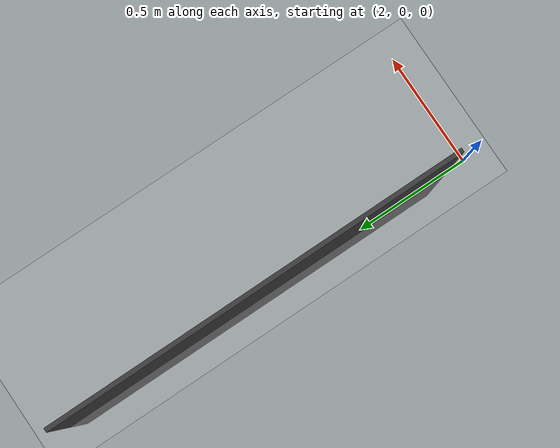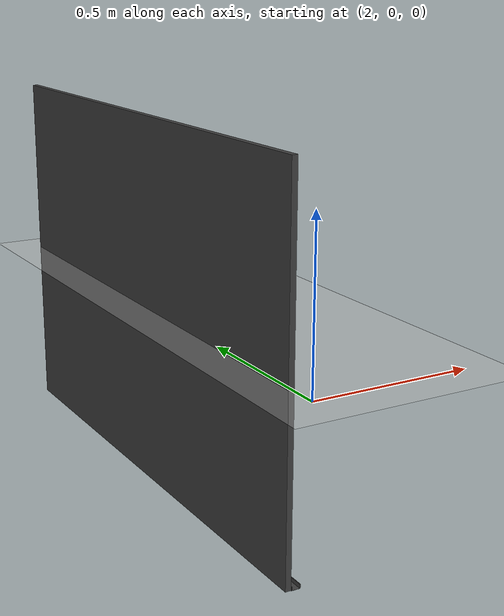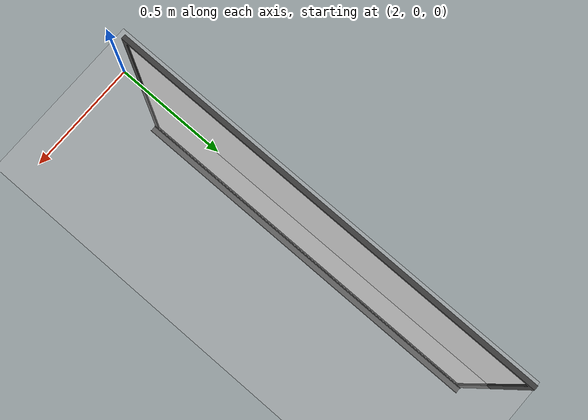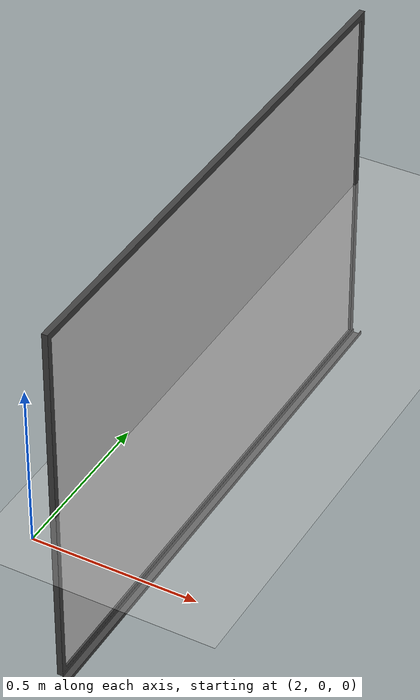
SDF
<sdf version='1.6'>
  <world name='default'>

    <include>
      <uri>model://ground_plane</uri>
    </include>

      <include>
          <uri>model://robert_gazebo/models/board_008</uri>
          <pose>2 1 0 0 0 0</pose>
          <name>BOARD_008</name>
      </include>
  </world>
</sdf>

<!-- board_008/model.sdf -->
<sdf version='1.5'>
    <model name="whiteboard_wall">
        <pose>0 0 0 0 0 0</pose>
        <static>true</static>
        <link name='model_body'>
            <visual name="visual">
                <geometry>
                    <mesh>
                        <uri>model://robert_gazebo/meshes/board_008_visual.dae</uri>
                        <scale>1 1 1</scale>
                    </mesh>
                </geometry>
            </visual>

            <collision name="collision">
                <geometry>
                    <mesh>
                        <uri>model://robert_gazebo/meshes/board_008_collision.dae</uri>
                        <scale>1 1 1</scale>
                    </mesh>
                </geometry>
            </collision>
            <inertial>
                <pose>0 0 0 0 0 0</pose>
                <inertia>

                    <ixx>6.001</ixx>
                    <ixy>0</ixy>
                    <ixz>0</ixz>
                    <iyy>2.761</iyy>
                    <iyz>0</iyz>
                    <izz>1.241</izz>
                </inertia>
                <mass>6.0</mass>
            </inertial>
        </link>
    </model>
</sdf>
